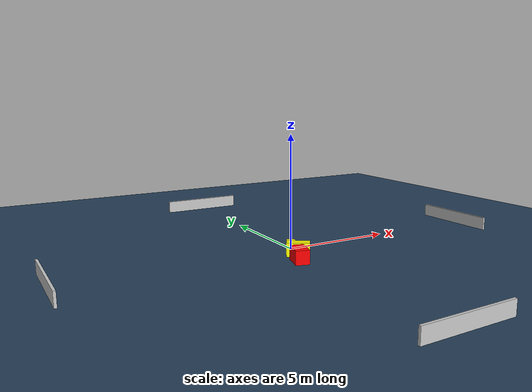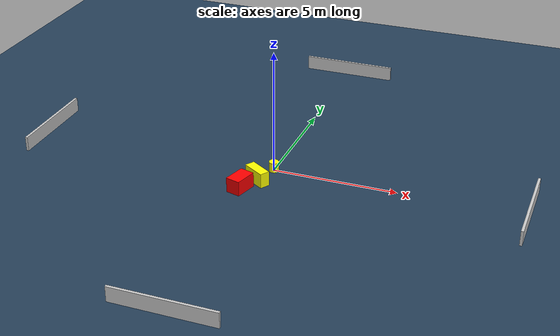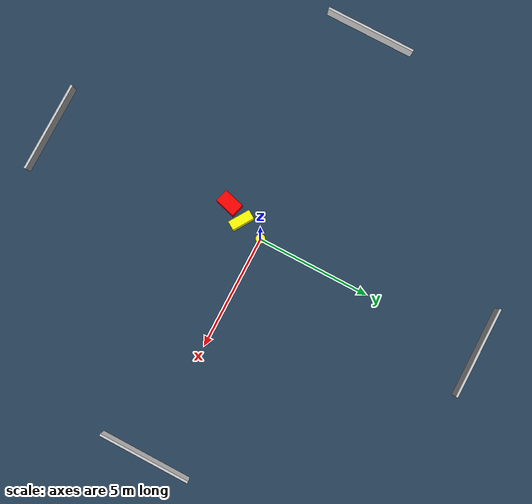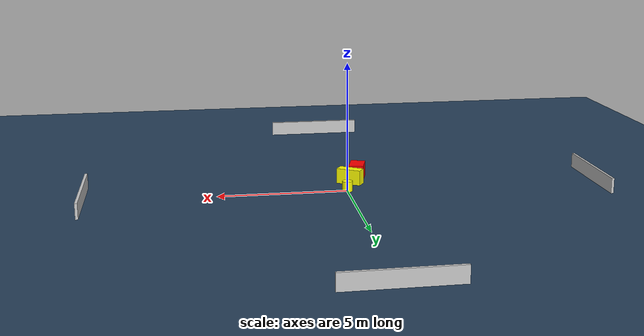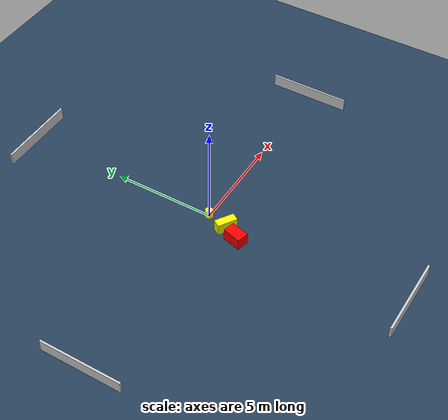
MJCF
<?xml version="1.0" ?>
<mujoco model="generated_environment">
  <option timestep="0.01" integrator="RK4" cone="elliptic"/>
  <default>
    <geom density="1"/>
  </default>
  <asset>
    <texture builtin="gradient" height="3072" name="skybox" rgb1="0.3 0.5 0.7" rgb2="0 0 0" type="skybox" width="512"/>
    <texture builtin="checker" height="300" name="groundplane" rgb1="0.2 0.3 0.4" rgb2="0.1 0.2 0.3" type="2d" width="300"/>
    <material name="groundplane" reflectance="0.2" texrepeat="5 5" texture="groundplane"/>
  </asset>
  <worldbody>
    <light dir="0 0 -1" directional="true" pos="0 0 1.5"/>
    <geom condim="3" friction="0.5 0.005 0.001" material="groundplane" name="floor" pos="0 0 0" size="0 0 0.05" type="plane"/>
    <body name="walls">
      <geom name="wall_1" condim="4" pos="-10.0 0.0 0.3" rgba="0.800000011920929 0.800000011920929 0.800000011920929 1.0" size="0.05 2.0 0.3" type="box"/>
      <geom name="wall_2" condim="4" pos="10.0 0.0 0.3" rgba="0.800000011920929 0.800000011920929 0.800000011920929 1.0" size="0.05 2.0 0.3" type="box"/>
      <geom name="wall_3" condim="4" pos="0.0 -10.0 0.3" rgba="0.800000011920929 0.800000011920929 0.800000011920929 1.0" size="2.0 0.05 0.3" type="box"/>
      <geom name="wall_4" condim="4" pos="0.0 10.0 0.3" rgba="0.800000011920929 0.800000011920929 0.800000011920929 1.0" size="2.0 0.05 0.3" type="box"/>
    </body>
    <body name="robot">
      <joint name="joint_x" type="slide" pos="0 0 0" axis="1 0 0"/>
      <joint name="joint_y" type="slide" pos="0 0 0" axis="0 1 0"/>
      <geom name="robot" type="cylinder" pos="0.0 0.0 0.2" size="0.2 0.2 0.0" mass="5.0" friction="1.0 0.005 0.0001" condim="4" rgba="1.0 1.0 0.0 1.0"/>
    </body>
    <body name="obstacle_1_movable">
      <geom name="obstacle_1_movable" condim="4" pos="-0.28823667612421017 -1.0602577473773303 0.3" euler="0 0 57.506264808107716" friction="0.0 0.005 0.001" rgba="1.0 1.0 0.0 1.0" size="0.2009024047647767 0.49427030878316014 0.3" type="box" mass="0.1"/>
      <joint type="free"/>
    </body>
    <body name="obstacle_2_static">
      <geom name="obstacle_2_static" condim="4" pos="-0.6973540549191594 -1.817860657113251 0.3" euler="0 0 344.3158981902487" friction="0.0 0.005 0.001" rgba="1.0 0.0 0.0 1.0" size="0.2932489128487756 0.46164845118355663 0.3" type="box"/>
    </body>
  </worldbody>
  <actuator>
    <motor name="actuator_x" joint="joint_x" gear="1" ctrlrange="-1 1"/>
    <motor name="actuator_y" joint="joint_y" gear="1" ctrlrange="-1 1"/>
  </actuator>
</mujoco>
